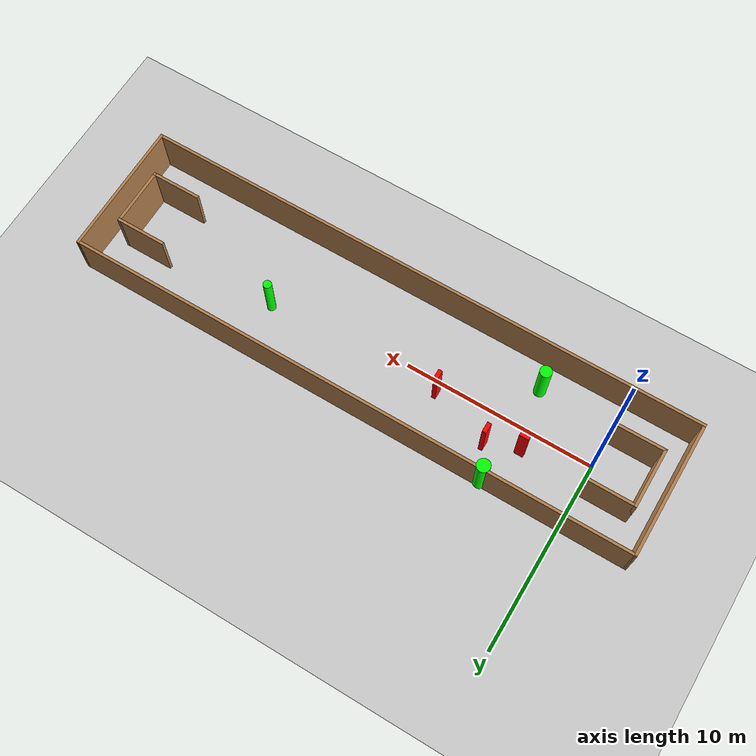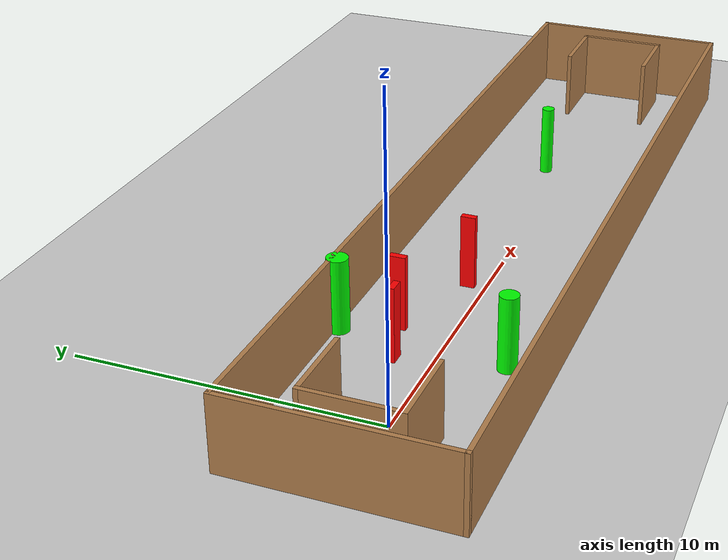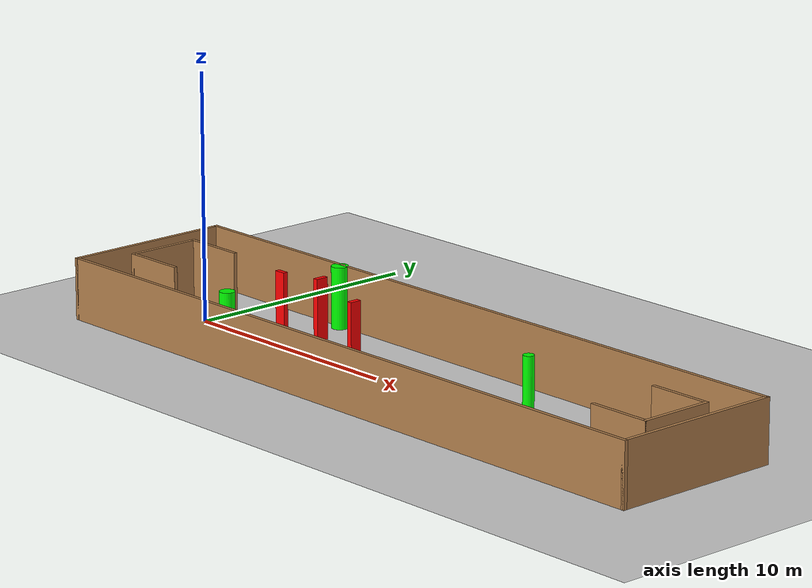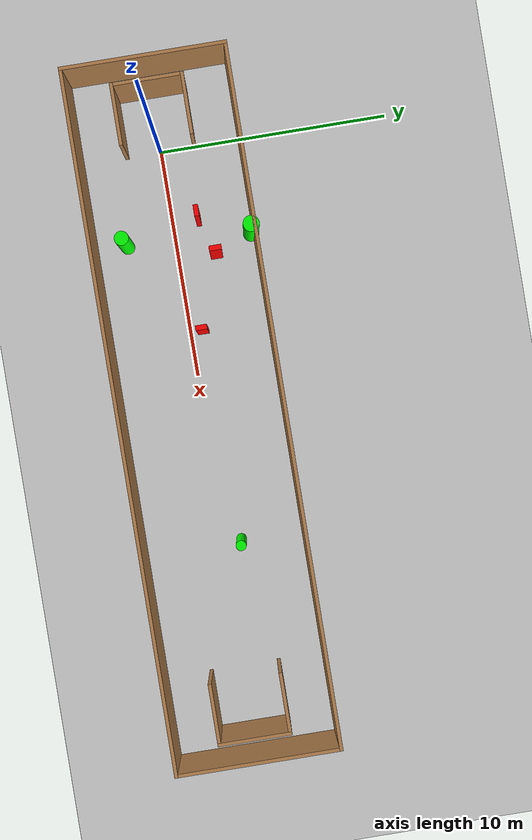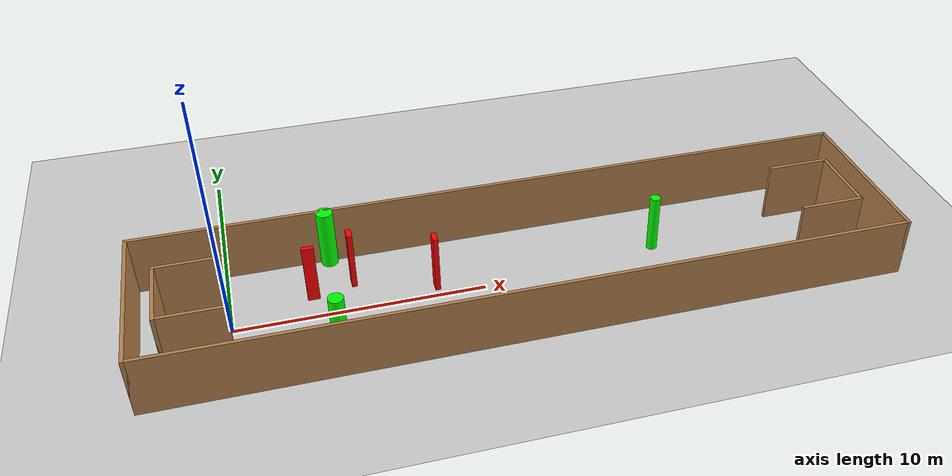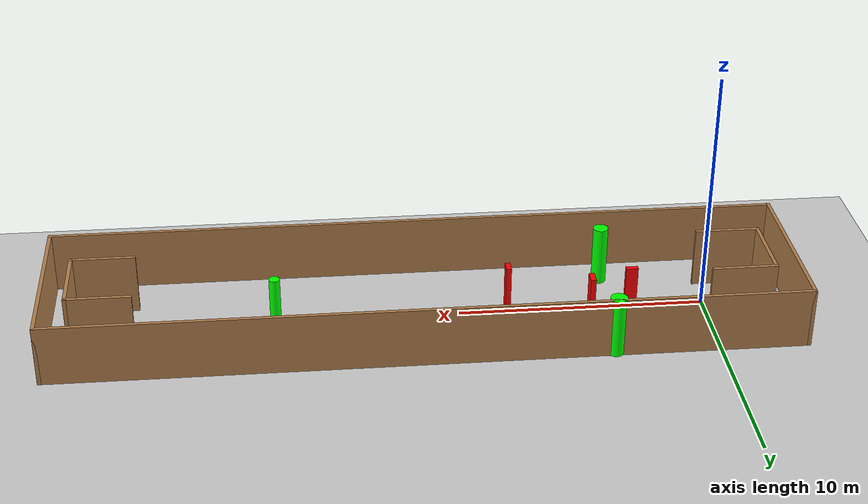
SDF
<sdf version="1.7">
 <world name="default">
  <light name="sun" type="directional">
   <pose>0 0 10 0 -0 0</pose>
   <diffuse>0.8 0.8 0.8 1</diffuse>
   <specular>0.2 0.2 0.2 1</specular>
   <attenuation>
    <range>1000</range>
    <constant>0.9</constant>
    <linear>0.01</linear>
    <quadratic>0.001</quadratic>
   </attenuation>
   <direction>-0.5 0.1 -0.9</direction>
   <spot><inner_angle>0</inner_angle><outer_angle>0</outer_angle><falloff>0</falloff></spot>
  </light>
  <model name="ground_plane">
   <static>1</static>
   <link name="link">
    <collision name="collision">
     <geometry><plane><normal>0 0 1</normal><size>100 100</size></plane></geometry>
     <surface>
      <contact><collide_bitmask>65535</collide_bitmask></contact>
      <friction><ode><mu>100</mu><mu2>50</mu2></ode></friction>
     </surface>
    </collision>
    <visual name="visual">
     <cast_shadows>0</cast_shadows>
     <geometry><plane><normal>0 0 1</normal><size>100 100</size></plane></geometry>
     <material>
      <script><uri>file://media/materials/scripts/gazebo.material</uri><name>Gazebo/Grey</name></script>
     </material>
    </visual>
   </link>
  </model>
  <gravity>0 0 -9.8</gravity>
  <magnetic_field>6e-06 2.3e-05 -4.2e-05</magnetic_field>
  <atmosphere type="adiabatic"/>
  <physics type="ode">
   <max_step_size>0.001</max_step_size>
   <real_time_factor>1</real_time_factor>
   <real_time_update_rate>1000</real_time_update_rate>
  </physics>
  <scene><ambient>0.4 0.4 0.4 1</ambient><background>0.7 0.7 0.7 1</background><shadows>1</shadows></scene>
  <spherical_coordinates>
   <surface_model>EARTH_WGS84</surface_model>
   <latitude_deg>0</latitude_deg>
   <longitude_deg>0</longitude_deg>
   <elevation>0</elevation>
   <heading_deg>0</heading_deg>
  </spherical_coordinates>
  <model name="my_base_walls">
   <link name="Wall_0">
    <collision name="Wall_0_Collision">
     <geometry><box><size>7.15 0.15 2.5</size></box></geometry>
     <pose>0 0 1.25 0 -0 0</pose>
    </collision>
    <visual name="Wall_0_Visual">
     <pose>0 0 1.25 0 -0 0</pose>
     <geometry><box><size>7.15 0.15 2.5</size></box></geometry>
     <material>
      <script><uri>file://media/materials/scripts/gazebo.material</uri><name>Gazebo/Wood</name></script>
      <ambient>1 1 1 1</ambient>
     </material>
     <meta><layer>0</layer></meta>
    </visual>
    <pose>-15 0 0 0 -0 1.5708</pose>
   </link>
   <link name="Wall_10">
    <collision name="Wall_10_Collision">
     <geometry><box><size>2.65 0.15 2.5</size></box></geometry>
     <pose>0 0 1.25 0 -0 0</pose>
    </collision>
    <visual name="Wall_10_Visual">
     <pose>0 0 1.25 0 -0 0</pose>
     <geometry><box><size>2.65 0.15 2.5</size></box></geometry>
     <material>
      <script><uri>file://media/materials/scripts/gazebo.material</uri><name>Gazebo/Wood</name></script>
      <ambient>1 1 1 1</ambient>
     </material>
     <meta><layer>0</layer></meta>
    </visual>
    <pose>-12.75 -1.5 0 0 -0 0</pose>
   </link>
   <link name="Wall_12">
    <collision name="Wall_12_Collision">
     <geometry><box><size>2.65 0.15 2.5</size></box></geometry>
     <pose>0 0 1.25 0 -0 0</pose>
    </collision>
    <visual name="Wall_12_Visual">
     <pose>0 0 1.25 0 -0 0</pose>
     <geometry><box><size>2.65 0.15 2.5</size></box></geometry>
     <material>
      <script><uri>file://media/materials/scripts/gazebo.material</uri><name>Gazebo/Wood</name></script>
      <ambient>1 1 1 1</ambient>
     </material>
     <meta><layer>0</layer></meta>
    </visual>
    <pose>-12.75 1.5 0 0 -0 0</pose>
   </link>
   <link name="Wall_14">
    <collision name="Wall_14_Collision">
     <geometry><box><size>3.15 0.15 2.5</size></box></geometry>
     <pose>0 0 1.25 0 -0 0</pose>
    </collision>
    <visual name="Wall_14_Visual">
     <pose>0 0 1.25 0 -0 0</pose>
     <geometry><box><size>3.15 0.15 2.5</size></box></geometry>
     <material>
      <script><uri>file://media/materials/scripts/gazebo.material</uri><name>Gazebo/Wood</name></script>
      <ambient>1 1 1 1</ambient>
     </material>
     <meta><layer>0</layer></meta>
    </visual>
    <pose>14 0 0 0 -0 -1.5708</pose>
   </link>
   <link name="Wall_15">
    <collision name="Wall_15_Collision">
     <geometry><box><size>2.65 0.15 2.5</size></box></geometry>
     <pose>0 0 1.25 0 -0 0</pose>
    </collision>
    <visual name="Wall_15_Visual">
     <pose>0 0 1.25 0 -0 0</pose>
     <geometry><box><size>2.65 0.15 2.5</size></box></geometry>
     <material>
      <script><uri>file://media/materials/scripts/gazebo.material</uri><name>Gazebo/Wood</name></script>
      <ambient>1 1 1 1</ambient>
     </material>
     <meta><layer>0</layer></meta>
    </visual>
    <pose>12.75 -1.5 0 0 -0 3.14159</pose>
   </link>
   <link name="Wall_17">
    <collision name="Wall_17_Collision">
     <geometry><box><size>2.65 0.15 2.5</size></box></geometry>
     <pose>0 0 1.25 0 -0 0</pose>
    </collision>
    <visual name="Wall_17_Visual">
     <pose>0 0 1.25 0 -0 0</pose>
     <geometry><box><size>2.65 0.15 2.5</size></box></geometry>
     <material>
      <script><uri>file://media/materials/scripts/gazebo.material</uri><name>Gazebo/Wood</name></script>
      <ambient>1 1 1 1</ambient>
     </material>
     <meta><layer>0</layer></meta>
    </visual>
    <pose>12.75 1.5 0 0 -0 3.14159</pose>
   </link>
   <link name="Wall_2">
    <collision name="Wall_2_Collision">
     <geometry><box><size>30.15 0.15 2.5</size></box></geometry>
     <pose>0 0 1.25 0 -0 0</pose>
    </collision>
    <visual name="Wall_2_Visual">
     <pose>0 0 1.25 0 -0 0</pose>
     <geometry><box><size>30.15 0.15 2.5</size></box></geometry>
     <material>
      <script><uri>file://media/materials/scripts/gazebo.material</uri><name>Gazebo/Wood</name></script>
      <ambient>1 1 1 1</ambient>
     </material>
     <meta><layer>0</layer></meta>
    </visual>
    <pose>-0 -3.5 0 0 -0 0</pose>
   </link>
   <link name="Wall_4">
    <collision name="Wall_4_Collision">
     <geometry><box><size>30.15 0.15 2.5</size></box></geometry>
     <pose>0 0 1.25 0 -0 0</pose>
    </collision>
    <visual name="Wall_4_Visual">
     <pose>0 0 1.25 0 -0 0</pose>
     <geometry><box><size>30.15 0.15 2.5</size></box></geometry>
     <material>
      <script><uri>file://media/materials/scripts/gazebo.material</uri><name>Gazebo/Wood</name></script>
      <ambient>1 1 1 1</ambient>
     </material>
     <meta><layer>0</layer></meta>
    </visual>
    <pose>-0 3.5 0 0 -0 0</pose>
   </link>
   <link name="Wall_6">
    <collision name="Wall_6_Collision">
     <geometry><box><size>7.15 0.15 2.5</size></box></geometry>
     <pose>0 0 1.25 0 -0 0</pose>
    </collision>
    <visual name="Wall_6_Visual">
     <pose>0 0 1.25 0 -0 0</pose>
     <geometry><box><size>7.15 0.15 2.5</size></box></geometry>
     <material>
      <script><uri>file://media/materials/scripts/gazebo.material</uri><name>Gazebo/Wood</name></script>
      <ambient>1 1 1 1</ambient>
     </material>
     <meta><layer>0</layer></meta>
    </visual>
    <pose>15 0 0 0 -0 -1.5708</pose>
   </link>
   <link name="Wall_9">
    <collision name="Wall_9_Collision">
     <geometry><box><size>3.15 0.15 2.5</size></box></geometry>
     <pose>0 0 1.25 0 -0 0</pose>
    </collision>
    <visual name="Wall_9_Visual">
     <pose>0 0 1.25 0 -0 0</pose>
     <geometry><box><size>3.15 0.15 2.5</size></box></geometry>
     <material>
      <script><uri>file://media/materials/scripts/gazebo.material</uri><name>Gazebo/Wood</name></script>
      <ambient>1 1 1 1</ambient>
     </material>
     <meta><layer>0</layer></meta>
    </visual>
    <pose>-14 0 0 0 -0 -1.5708</pose>
   </link>
   <static>1</static>
   <pose>11.5 0 0 0 -0 0</pose>
  </model>
  <model name="cylinder1">
   <static>1</static>
   <link name="link">
    <inertial>
     <mass>1</mass>
     <inertia><ixx>0.5</ixx><ixy>0</ixy><ixz>0</ixz><iyy>0.5</iyy><iyz>0</iyz><izz>1</izz></inertia>
    </inertial>
    <collision name="collision">
     <geometry><cylinder><radius>0.21793300666539117</radius><length>2.5</length></cylinder></geometry>
    </collision>
    <visual name="visual">
     <geometry><cylinder><radius>0.21793300666539117</radius><length>2.5</length></cylinder></geometry>
     <material>
      <ambient>0 1 0 1</ambient>
      <diffuse>0 1 0 1</diffuse>
      <specular>0.1 0.1 0.1 1</specular>
      <emissive>0 0 0 0</emissive>
     </material>
    </visual>
   </link>
   <pose>17.413683979085476 0.7484763005259545 1.25 0 0 0</pose>
  </model>
  <model name="cylinder2">
   <static>1</static>
   <link name="link">
    <inertial>
     <mass>1</mass>
     <inertia><ixx>0.5</ixx><ixy>0</ixy><ixz>0</ixz><iyy>0.5</iyy><iyz>0</iyz><izz>1</izz></inertia>
    </inertial>
    <collision name="collision">
     <geometry><cylinder><radius>0.34654288100309555</radius><length>2.5</length></cylinder></geometry>
    </collision>
    <visual name="visual">
     <geometry><cylinder><radius>0.34654288100309555</radius><length>2.5</length></cylinder></geometry>
     <material>
      <ambient>0 1 0 1</ambient>
      <diffuse>0 1 0 1</diffuse>
      <specular>0.1 0.1 0.1 1</specular>
      <emissive>0 0 0 0</emissive>
     </material>
    </visual>
   </link>
   <pose>4.182330213539448 3.3421581055656207 1.25 0 0 0</pose>
  </model>
  <model name="cylinder3">
   <static>1</static>
   <link name="link">
    <inertial>
     <mass>1</mass>
     <inertia><ixx>0.5</ixx><ixy>0</ixy><ixz>0</ixz><iyy>0.5</iyy><iyz>0</iyz><izz>1</izz></inertia>
    </inertial>
    <collision name="collision">
     <geometry><cylinder><radius>0.3054269651897963</radius><length>2.5</length></cylinder></geometry>
    </collision>
    <visual name="visual">
     <geometry><cylinder><radius>0.3054269651897963</radius><length>2.5</length></cylinder></geometry>
     <material>
      <ambient>0 1 0 1</ambient>
      <diffuse>0 1 0 1</diffuse>
      <specular>0.1 0.1 0.1 1</specular>
      <emissive>0 0 0 0</emissive>
     </material>
    </visual>
   </link>
   <pose>3.9187546103143944 -2.115079654650826 1.25 0 0 0</pose>
  </model>
  <model name="box1">
   <static>1</static>
   <link name="link">
    <inertial>
     <mass>1</mass>
     <inertia><ixx>0.083</ixx><ixy>0</ixy><ixz>0</ixz><iyy>0.083</iyy><iyz>0</iyz><izz>0.083</izz></inertia>
    </inertial>
    <collision name="collision">
     <geometry><box><size>0.2116945967222256 0.48592348865562407 2.5</size></box></geometry>
    </collision>
    <visual name="visual">
     <geometry><box><size>0.2116945967222256 0.48592348865562407 2.5</size></box></geometry>
     <material>
      <ambient>1 0 0 1</ambient>
      <diffuse>1 0 0 1</diffuse>
      <specular>0.1 0.1 0.1 1</specular>
      <emissive>0 0 0 0</emissive>
     </material>
    </visual>
    <sensor name="my_contact" type="contact">
     <contact><collision>box_collision</collision><topic>__default_topic__</topic></contact>
    </sensor>
   </link>
   <pose>8.129951021686539 0.5780681576785076 1.25 0 0 0</pose>
  </model>
  <model name="box2">
   <static>1</static>
   <link name="link">
    <inertial>
     <mass>1</mass>
     <inertia><ixx>0.083</ixx><ixy>0</ixy><ixz>0</ixz><iyy>0.083</iyy><iyz>0</iyz><izz>0.083</izz></inertia>
    </inertial>
    <collision name="collision">
     <geometry><box><size>0.2166472870306734 0.5275399707450606 2.5</size></box></geometry>
    </collision>
    <visual name="visual">
     <geometry><box><size>0.2166472870306734 0.5275399707450606 2.5</size></box></geometry>
     <material>
      <ambient>1 0 0 1</ambient>
      <diffuse>1 0 0 1</diffuse>
      <specular>0.1 0.1 0.1 1</specular>
      <emissive>0 0 0 0</emissive>
     </material>
    </visual>
    <sensor name="my_contact" type="contact">
     <contact><collision>box_collision</collision><topic>__default_topic__</topic></contact>
    </sensor>
   </link>
   <pose>4.9314692528258455 1.6929580246823175 1.25 0 0 0</pose>
  </model>
  <model name="box3">
   <static>1</static>
   <link name="link">
    <inertial>
     <mass>1</mass>
     <inertia><ixx>0.083</ixx><ixy>0</ixy><ixz>0</ixz><iyy>0.083</iyy><iyz>0</iyz><izz>0.083</izz></inertia>
    </inertial>
    <collision name="collision">
     <geometry><box><size>0.48442026551167733 0.20049196456677065 2.5</size></box></geometry>
    </collision>
    <visual name="visual">
     <geometry><box><size>0.48442026551167733 0.20049196456677065 2.5</size></box></geometry>
     <material>
      <ambient>1 0 0 1</ambient>
      <diffuse>1 0 0 1</diffuse>
      <specular>0.1 0.1 0.1 1</specular>
      <emissive>0 0 0 0</emissive>
     </material>
    </visual>
    <sensor name="my_contact" type="contact">
     <contact><collision>box_collision</collision><topic>__default_topic__</topic></contact>
    </sensor>
   </link>
   <pose>3.2593425660392885 1.1561267347881277 1.25 0 0 0</pose>
  </model>
 </world>
</sdf>
